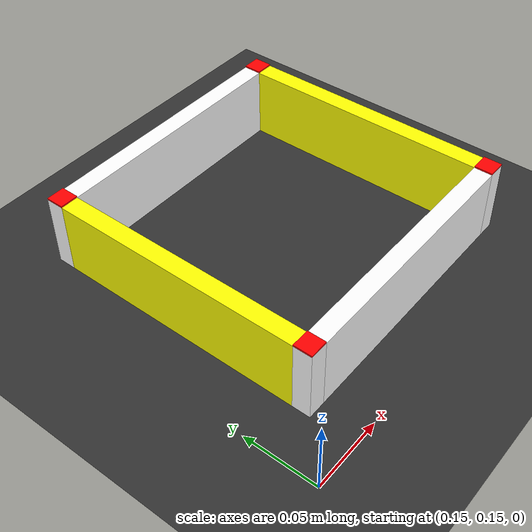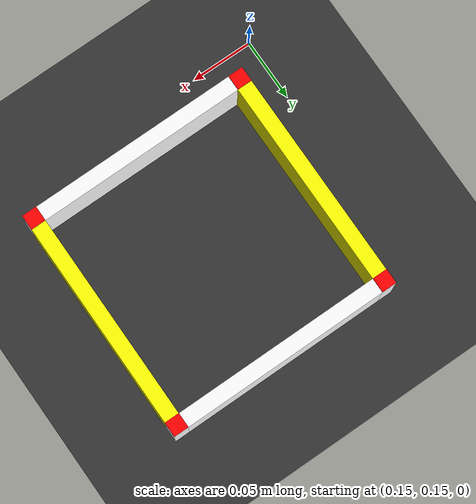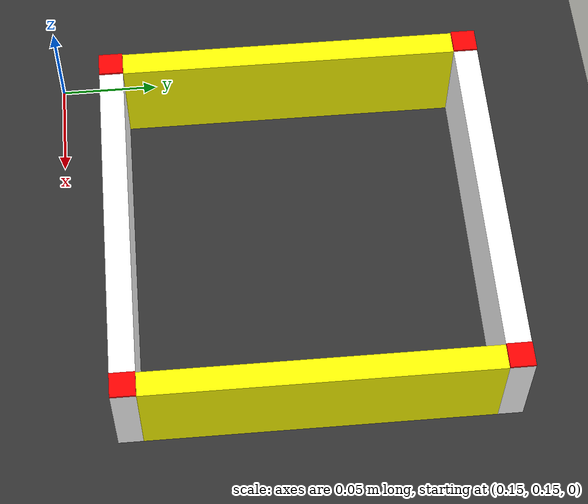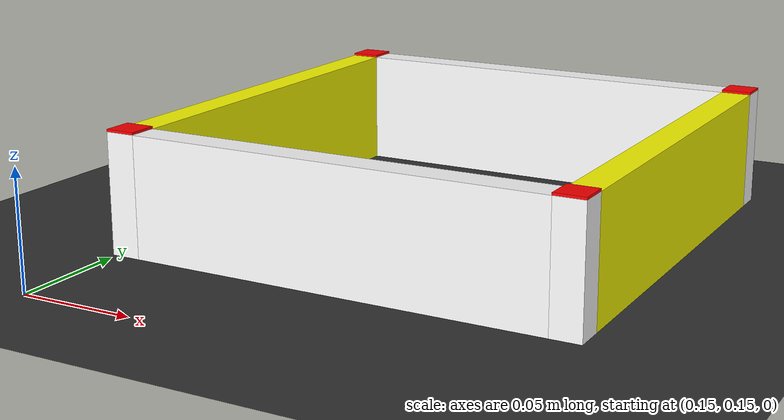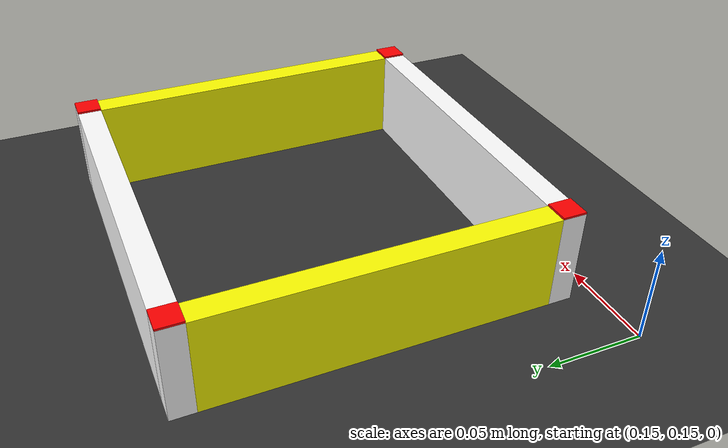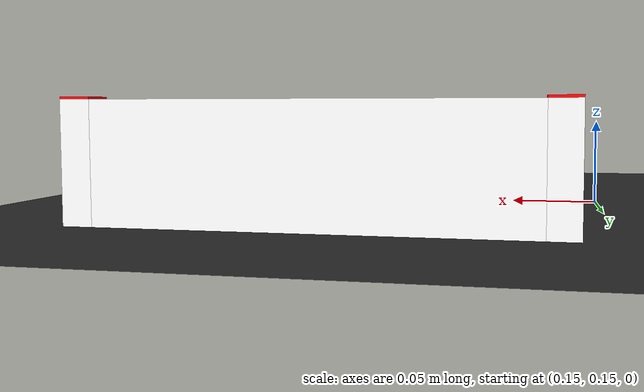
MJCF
<mujoco model="maze">
<compiler angle="degree" coordinate="local" inertiafromgeom="true" />
    <option integrator="RK4" />
    <worldbody>
       <!-- ベース板 -->
        <body name="base_plate1" pos="0.27 0.27 0.013">
        <geom type="plane" mass="0.1" size="0.20 0.20 0.004" rgba="0.2 0.2 0.2 1" friction="0.0 0.0 0.0"/>
        </body>

        <!-- Column 1-6-->
        <body pos="0.18 0.18 0.037">
            <body pos="0 0 -0.0005">
                <geom type="box" mass="0.01" size="0.006 0.006 0.0245" rgba="1 1 1 1"/>
            </body>
            <!--柱上赤蓋-->
            <body pos="0 0 0.0245">
                <geom type="box" mass="0.01" size="0.006 0.006 0.0005" rgba="1 0 0 1"/>
            </body>
        </body>
        <!-- Column 1-7-->
        <body pos="0.36 0.18 0.037">
            <body pos="0 0 -0.0005">
                <geom type="box" mass="0.01" size="0.006 0.006 0.0245" rgba="1 1 1 1"/>
            </body>
            <!--柱上赤蓋-->
            <body pos="0 0 0.0245">
                <geom type="box" mass="0.01" size="0.006 0.006 0.0005" rgba="1 0 0 1"/>
            </body>
        </body>
        <!-- Column 2-10-->
        <body pos="0.18 0.36 0.037">
            <body pos="0 0 -0.0005">
                <geom type="box" mass="0.01" size="0.006 0.006 0.0245" rgba="1 1 1 1"/>
            </body>
            <!--柱上赤蓋-->
            <body pos="0 0 0.0245">
                <geom type="box" mass="0.01" size="0.006 0.006 0.0005" rgba="1 0 0 1"/>
            </body>
        </body>
        <!-- Column 1-11-->
        <body pos="0.36 0.36 0.037">
            <body pos="0 0 -0.0005">
                <geom type="box" mass="0.01" size="0.006 0.006 0.0245" rgba="1 1 1 1"/>
            </body>
            <!--柱上赤蓋-->
            <body pos="0 0 0.0245">
                <geom type="box" mass="0.01" size="0.006 0.006 0.0005" rgba="1 0 0 1"/>
            </body>
        </body>

        <!-- #############################基本コースここまで###############################-->
        <!-- #############################基本コースここまで###############################-->
        <!-- #############################基本コースここまで###############################-->

        <!-- #############################ランダム出現用壁の定義###############################-->
        <!-- #############################ランダム出現用壁の定義###############################-->
        <!-- #############################ランダム出現用壁の定義###############################-->
        <!-- #############################ランダム出現用壁の定義###############################-->

        <!-- #############################コース1###############################-->
        <!-- #############################コース1###############################-->

        <!-- Wall 1-左-->
        <body pos="0.18 0.27 0.037" name="1-left_wall">
            <body pos="0 0 -0.0005">
                <geom type="box" mass="0.01" size="0.006 0.084 0.0245" rgba="1 1 0 1"/>
                <joint type="slide" axis="1 0 0" range="-0.5 0.0" limited="true"/>
            </body>
        </body>

        <!-- Wall 1-前-->
        <body pos="0.27 0.36 0.037" name="1-forward_wall">
            <body pos="0 0 -0.0005">
                <geom type="box" mass="0.01" size="0.084 0.006 0.0245" rgba="1 1 1 1"/>
                <joint type="slide" axis="0 1 0" range="0.0 0.5" limited="true"/>
            </body>
        </body>

        <!-- Wall 1-右 -->
        <body pos="0.36 0.27 0.037" name="1-right_wall">
            <body pos="0 0 -0.0005">
                <geom type="box" mass="0.01" size="0.006 0.084 0.0245" rgba="1 1 0 1"/>
                <joint type="slide" axis="1 0 0" range="0.0 0.5" limited="true"/>
            </body>
        </body>

        <!-- Wall 1-後ろ -->
        <body pos="0.27 0.18 0.037" name="1-back_wall">
            <body pos="0 0 -0.0005">
                <geom type="box" mass="0.01" size="0.084 0.006 0.0245" rgba="1 1 1 1"/>
                <joint type="slide" axis="0 1 0" range="-0.5 0.0" limited="true"/>
            </body>
        </body>

    </worldbody>
</mujoco>
